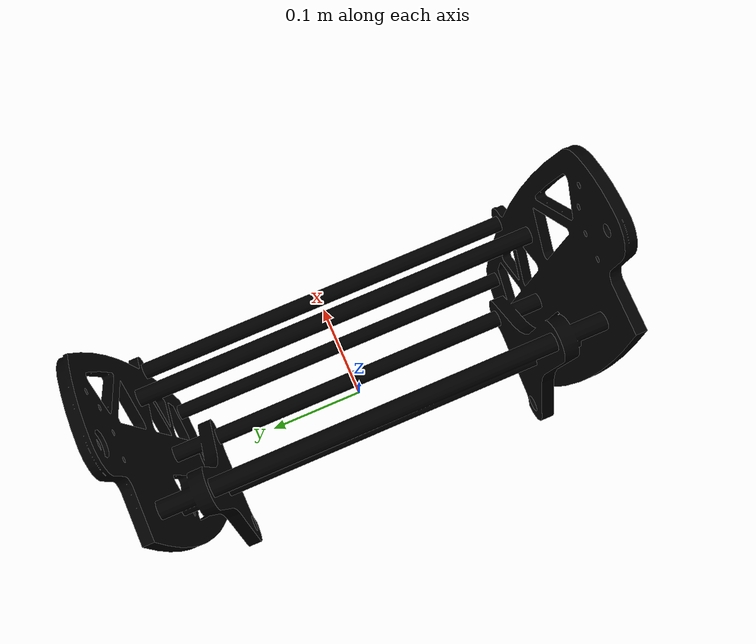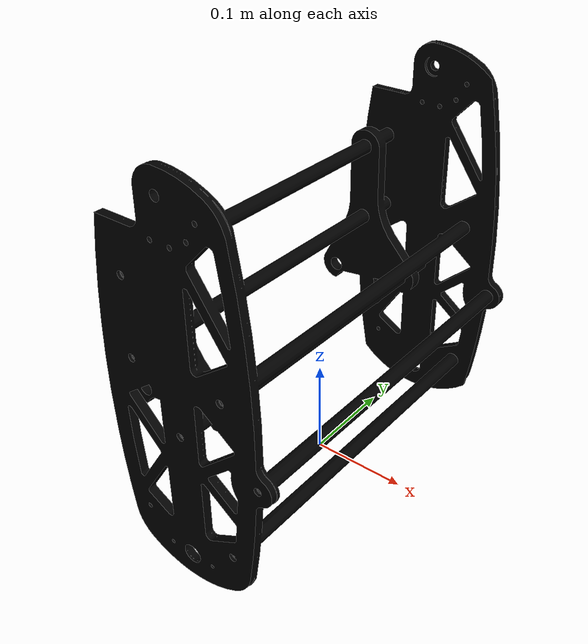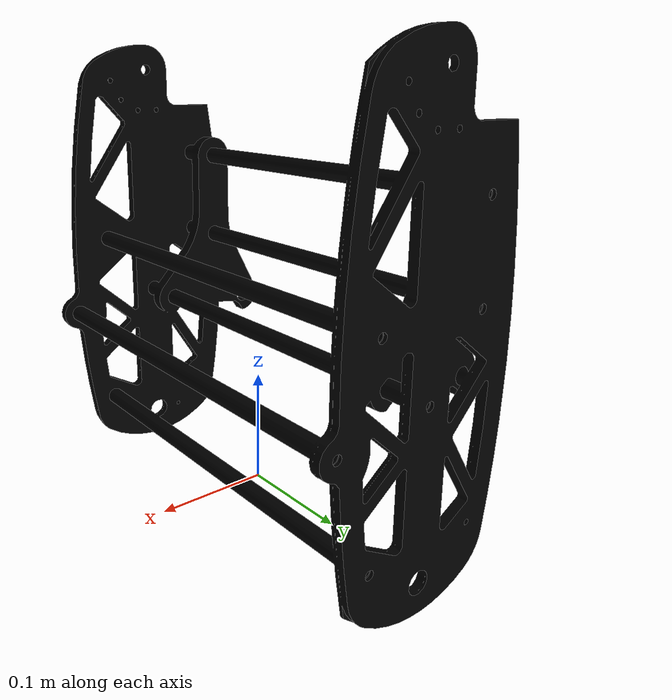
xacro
<?xml version="1.0"?>
<robot  xmlns:xacro="http://www.ros.org/wiki/xacro">

  <xacro:property name="PI" value="3.1415926535897931"/>

	<link name="thigh">
		<collision>
		  <origin rpy="0 0 0" xyz="0 0 0"/>
		  <geometry>
		   <mesh filename="package://robbie_description/meshes/THIGH_ASS_PART_collision.STL"/>
		 </geometry>
	 </collision>
	 <visual>
		<origin rpy="0 0 0" xyz="0 0 0"/>
		<geometry>
		  <mesh filename="package://robbie_description/meshes/THIGH_ASS_PART.STL" scale="1 1 1"/>
		</geometry>
		<material name="black">
		  <color rgba="0.0 0.0 0.0 1.0"/>
		</material>
	</visual>
	<inertial>
		<origin xyz="0 0 ${thighHeight/2}" rpy="0 0 0"/>
		<mass value="${thighMass}"/>
		<box_inertia m="${thighMass}" x="${thighWidth}" y="${thighDepth}" z="${thighHeight}"/>
	</inertial>
	</link>

</robot>
